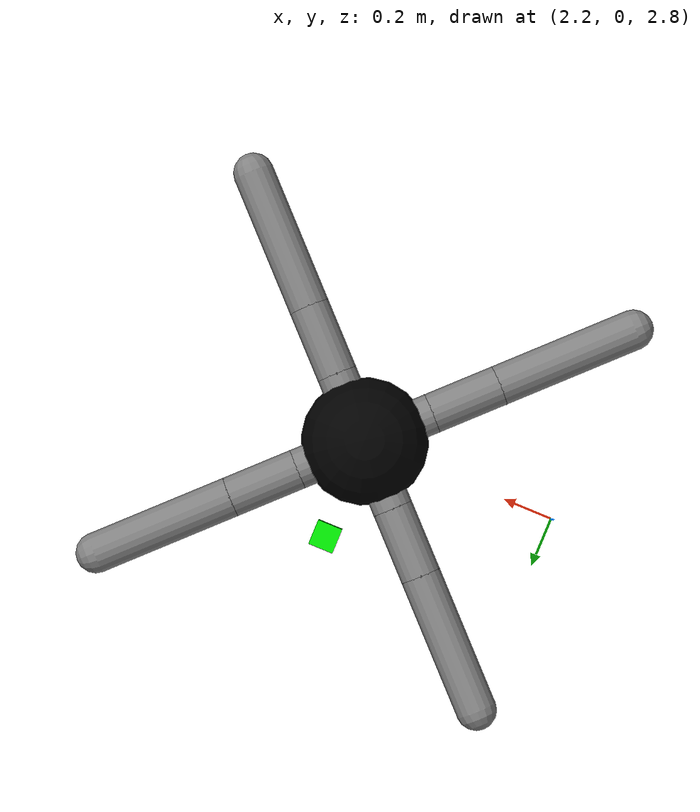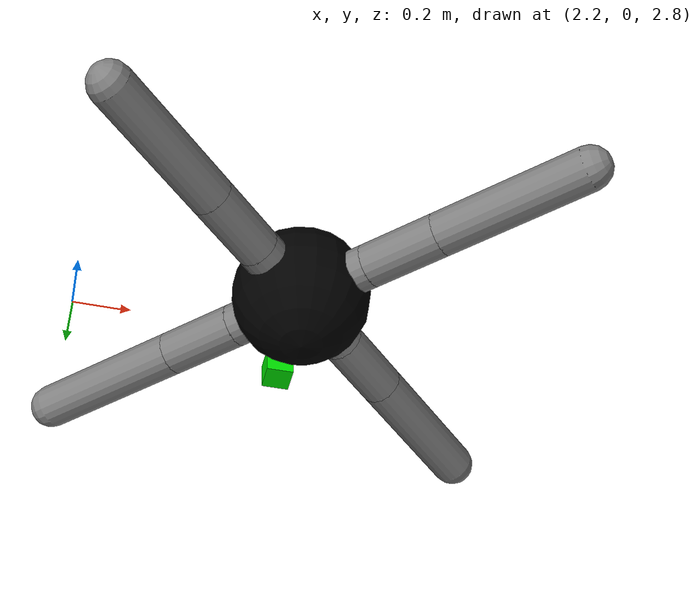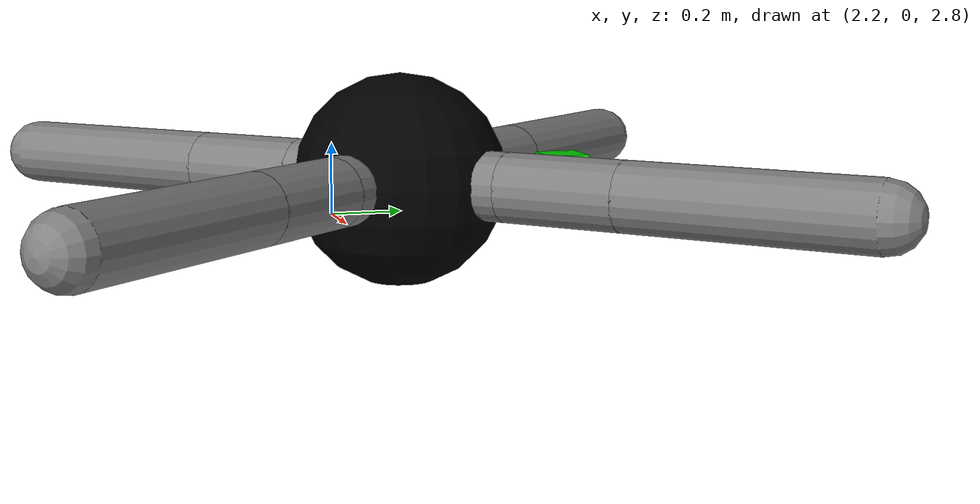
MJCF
<mujoco model="agent">
    <default>
        <joint armature="1" damping="1" limited="true"/>
    </default>
    <worldbody>
    <body name="agent" pos="3 0 3" euler="0 0 90">
        <camera name="agent1_track" mode="trackcom" pos="0 -3 0.3" xyaxes="1 0 0 0 0 1"/>
        <site name="agent1_box_range" type="box" pos="0.4 0 0" size=".05 .05 .05" rgba="0 .9 0 1" euler="0 90 0"/>
        <geom name="agent1_torso_geom" pos="0 0 0" size="0.25" rgba="0 0 0 1" type="sphere"/>
        <joint armature="0" damping="0" limited="false" margin="0.01" name="agent1_root" type="free"/>
        <camera name="agent_1_camera" pos="0 0 0" euler="90 0 0"/>
        <body name="agent1_front_left_leg" pos="0 0 0">
            <geom fromto="0.0 0.0 0.0 0.2 0.2 0.0" name="agent1_aux_1_geom" size="0.08" type="capsule"/>
            <body name="agent1_aux_1" pos="0.2 0.2 0">
                <joint axis="0 0 1" name="agent1_hip_1" pos="0.0 0.0 0.0" range="-30 30" type="hinge"/>
                <geom fromto="0.0 0.0 0.0 0.2 0.2 0.0" name="agent1_left_leg_geom" size="0.08" type="capsule"/>
                <body pos="0.2 0.2 0">
                    <joint axis="-1 1 0" name="agent1_ankle_1" pos="0.0 0.0 0.0" range="30 70" type="hinge"/>
                    <geom fromto="0.0 0.0 0.0 0.4 0.4 0.0" name="agent1_left_ankle_geom" size="0.08" type="capsule"/>
                </body>
            </body>
        </body>
        <body name="agent1_front_right_leg" pos="0 0 0">
            <geom fromto="0.0 0.0 0.0 -0.2 0.2 0.0" name="agent1_aux_2_geom" size="0.08" type="capsule"/>
            <body name="agent1_aux_2" pos="-0.2 0.2 0">
                <joint axis="0 0 1" name="agent1_hip_2" pos="0.0 0.0 0.0" range="-30 30" type="hinge"/>
                <geom fromto="0.0 0.0 0.0 -0.2 0.2 0.0" name="agent1_right_leg_geom" size="0.08" type="capsule"/>
                <body pos="-0.2 0.2 0">
                    <joint axis="1 1 0" name="agent1_ankle_2" pos="0.0 0.0 0.0" range="-70 -30" type="hinge"/>
                    <geom fromto="0.0 0.0 0.0 -0.4 0.4 0.0" name="agent1_right_ankle_geom" size="0.08" type="capsule"/>
                </body>
            </body>
        </body>
        <body name="agent1_back_leg" pos="0 0 0">
            <geom fromto="0.0 0.0 0.0 -0.2 -0.2 0.0" name="agent1_aux_3_geom" size="0.08" type="capsule"/>
            <body name="agent1_aux_3" pos="-0.2 -0.2 0">
                <joint axis="0 0 1" name="agent1_hip_3" pos="0.0 0.0 0.0" range="-30 30" type="hinge"/>
                <geom fromto="0.0 0.0 0.0 -0.2 -0.2 0.0" name="agent1_back_leg_geom" size="0.08" type="capsule"/>
                <body pos="-0.2 -0.2 0">
                    <joint axis="-1 1 0" name="agent1_ankle_3" pos="0.0 0.0 0.0" range="-70 -30" type="hinge"/>
                    <geom fromto="0.0 0.0 0.0 -0.4 -0.4 0.0" name="agent1_third_ankle_geom" size="0.08" type="capsule"/>
                </body>
            </body>
        </body>
        <body name="agent1_right_back_leg" pos="0 0 0">
            <geom fromto="0.0 0.0 0.0 0.2 -0.2 0.0" name="agent1_aux_4_geom" size="0.08" type="capsule"/>
            <body name="agent1_aux_4" pos="0.2 -0.2 0">
                <joint axis="0 0 1" name="agent1_hip_4" pos="0.0 0.0 0.0" range="-30 30" type="hinge"/>
                <geom fromto="0.0 0.0 0.0 0.2 -0.2 0.0" name="agent1_rightback_leg_geom" size="0.08" type="capsule"/>
                <body pos="0.2 -0.2 0">
                    <joint axis="1 1 0" name="agent1_ankle_4" pos="0.0 0.0 0.0" range="30 70" type="hinge"/>
                    <geom fromto="0.0 0.0 0.0 0.4 -0.4 0.0" name="agent1_fourth_ankle_geom" size="0.08" type="capsule"/>
                </body>
            </body>
        </body>
    </body>
    </worldbody>
    <actuator>
        <motor ctrllimited="true" ctrlrange="-1.0 1.0" joint="agent1_hip_4" gear="150"/>
        <motor ctrllimited="true" ctrlrange="-1.0 1.0" joint="agent1_ankle_4" gear="150"/>
        <motor ctrllimited="true" ctrlrange="-1.0 1.0" joint="agent1_hip_1" gear="150"/>
        <motor ctrllimited="true" ctrlrange="-1.0 1.0" joint="agent1_ankle_1" gear="150"/>
        <motor ctrllimited="true" ctrlrange="-1.0 1.0" joint="agent1_hip_2" gear="150"/>
        <motor ctrllimited="true" ctrlrange="-1.0 1.0" joint="agent1_ankle_2" gear="150"/>
        <motor ctrllimited="true" ctrlrange="-1.0 1.0" joint="agent1_hip_3" gear="150"/>
        <motor ctrllimited="true" ctrlrange="-1.0 1.0" joint="agent1_ankle_3" gear="150"/>
    </actuator>
    <sensor>
        <rangefinder name="agent1_box1" site="agent1_box_range" cutoff="20"/>
        <frameyaxis name="agent1_yAxis" objtype="site" objname="agent1_box_range"/>
    </sensor>
</mujoco>
